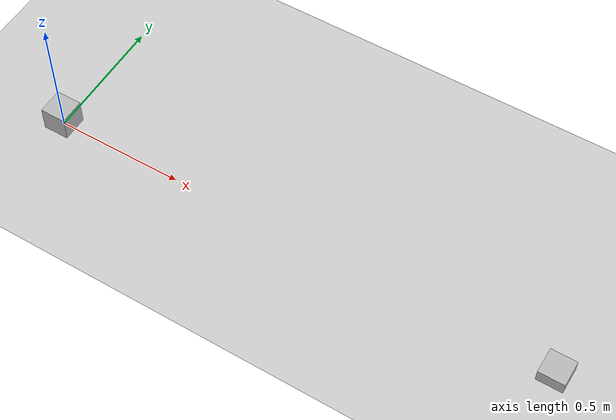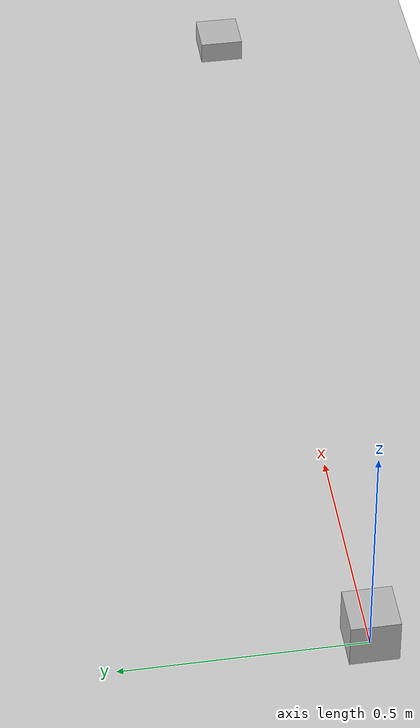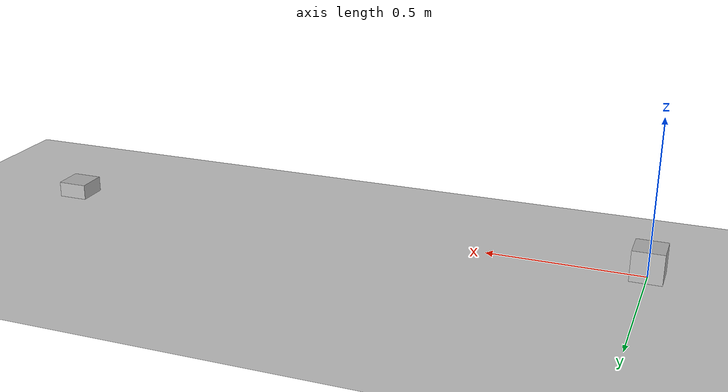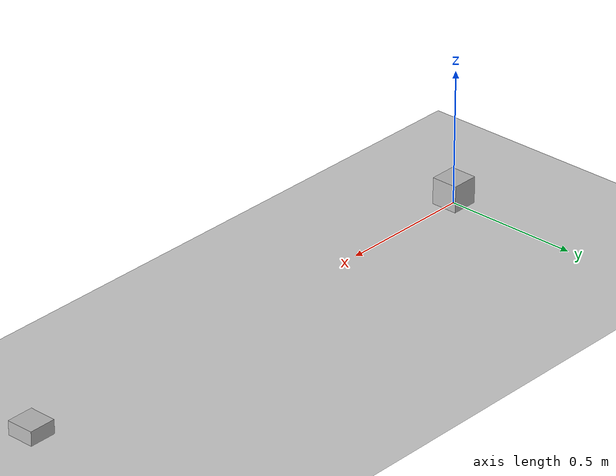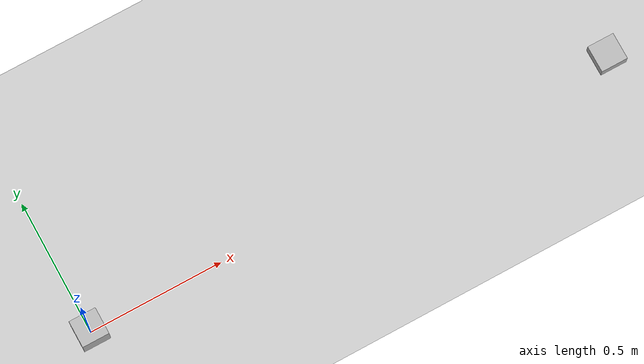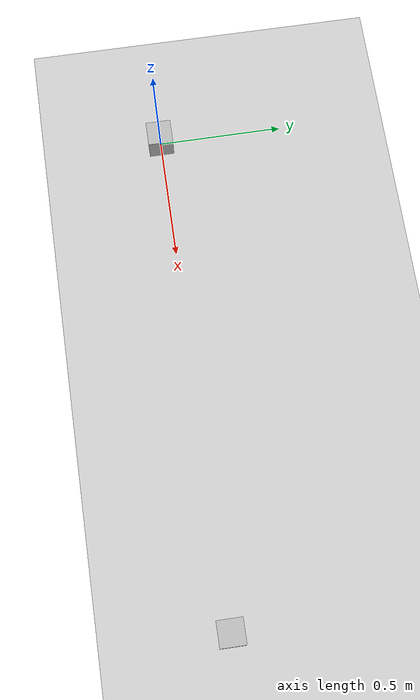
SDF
<?xml version="1.0" ?>
<sdf version="1.5">
  <world name="default">
    <include>
      <uri>model://ground_plane</uri>
    </include>
    <include>
      <uri>model://sun</uri>
    </include>
    <include>
      <uri>model://camera</uri>
    </include>
    <include>
      <uri>model://camera</uri>
      <pose>2 0 0 0 0 0</pose>
      <name>camera 2</name>
    </include>
  </world>
</sdf>

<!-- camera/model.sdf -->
<sdf version="1.5">
  <model name="camera">
    <pose>0 0 0.05 0 0 0</pose>
    <link name="link">
      <inertial>
        <mass>0.1</mass>
        <inertia>
          <ixx>0.000166667</ixx>
          <iyy>0.000166667</iyy>
          <izz>0.000166667</izz>
        </inertia>
      </inertial>
      <collision name="collision">
        <geometry>
          <box>
            <size>0.1 0.1 0.1</size>
          </box>
        </geometry>
      </collision>
      <visual name="visual">
        <geometry>
          <box>
            <size>0.1 0.1 0.1</size>
          </box>
        </geometry>
      </visual>
      <sensor name="camera" type="camera">
        <camera>
          <horizontal_fov>1.047</horizontal_fov>
          <image>
            <width>320</width>
            <height>240</height>
          </image>
          <clip>
            <near>0.1</near>
            <far>100</far>
          </clip>
        </camera>
        <always_on>1</always_on>
        <update_rate>30</update_rate>
        <visualize>true</visualize>
      </sensor>
    </link>
  </model>
</sdf>
